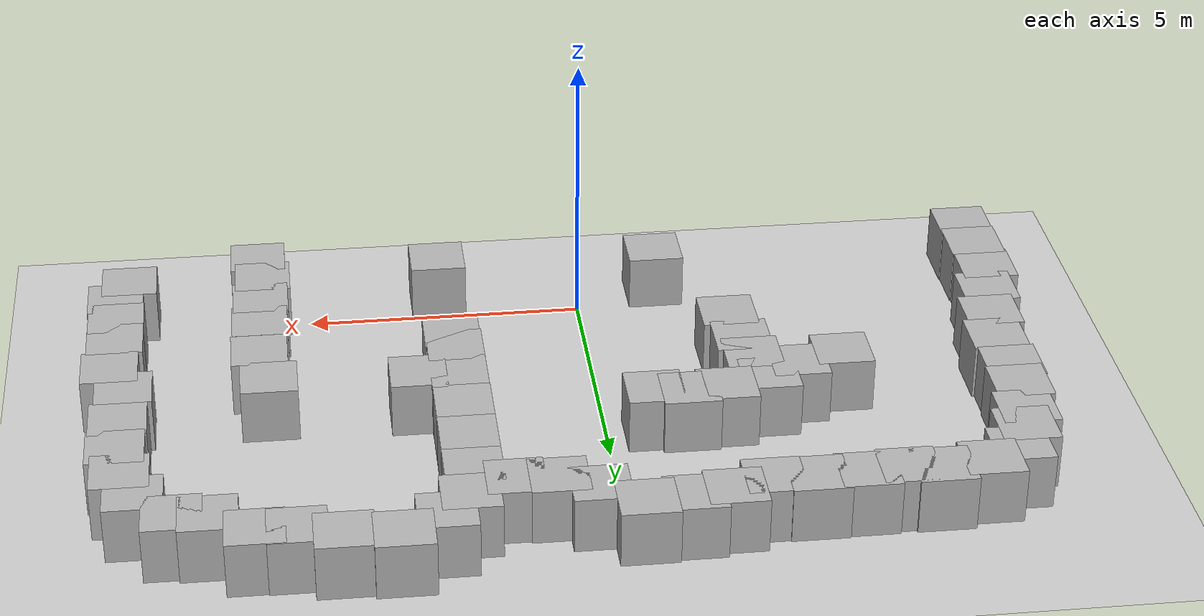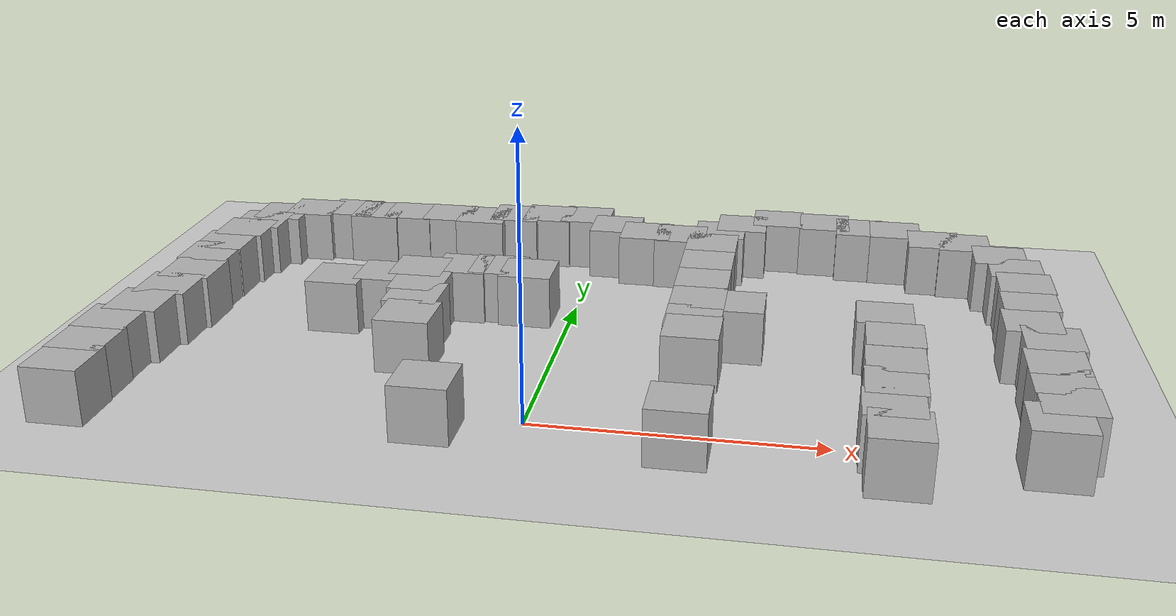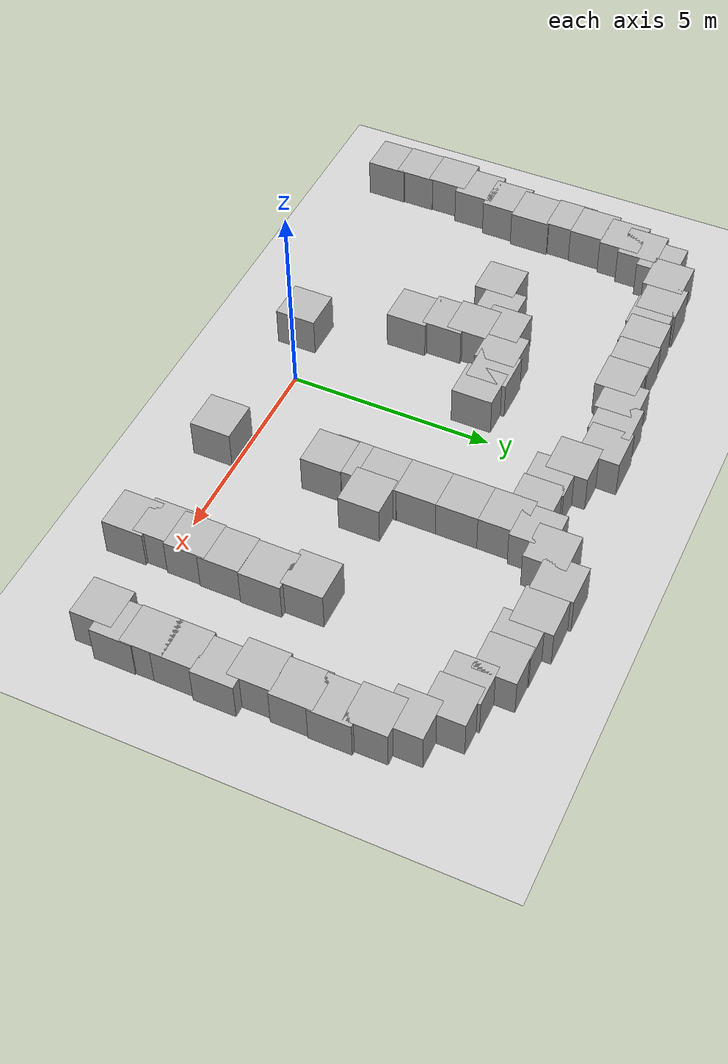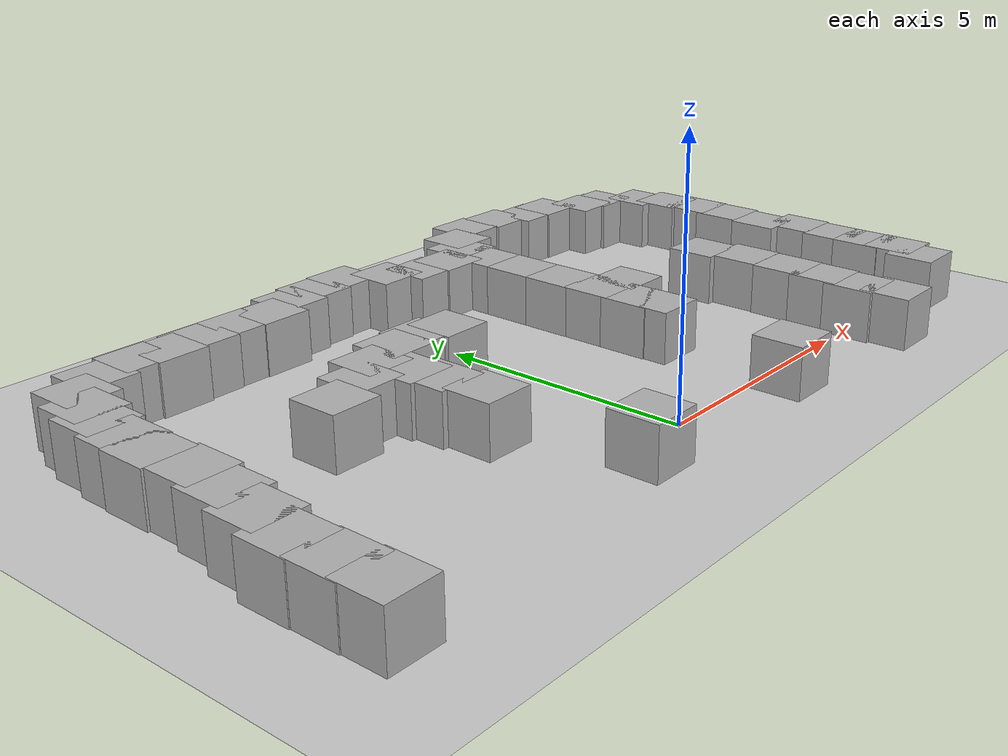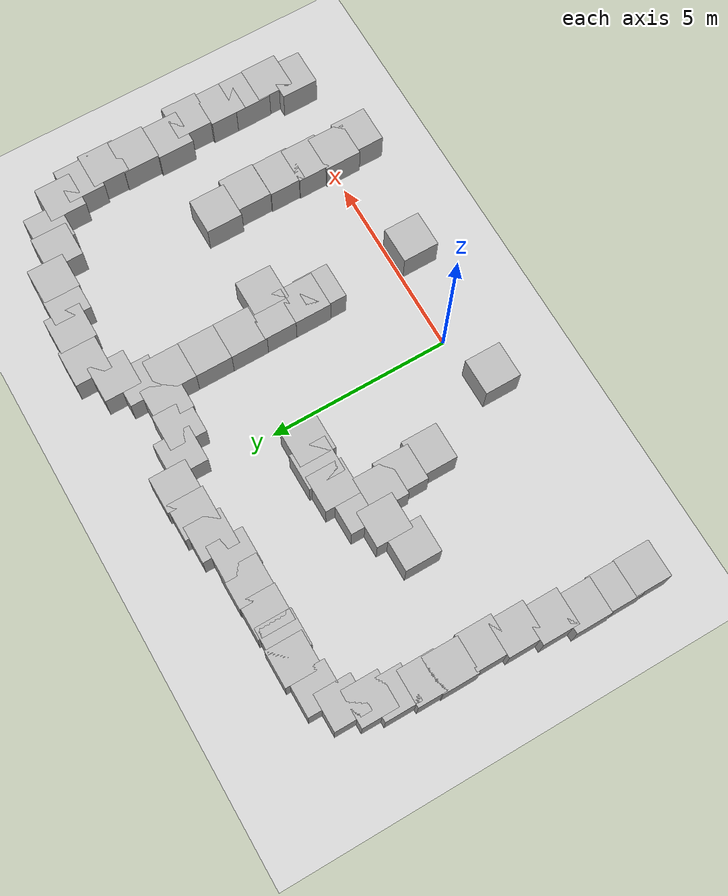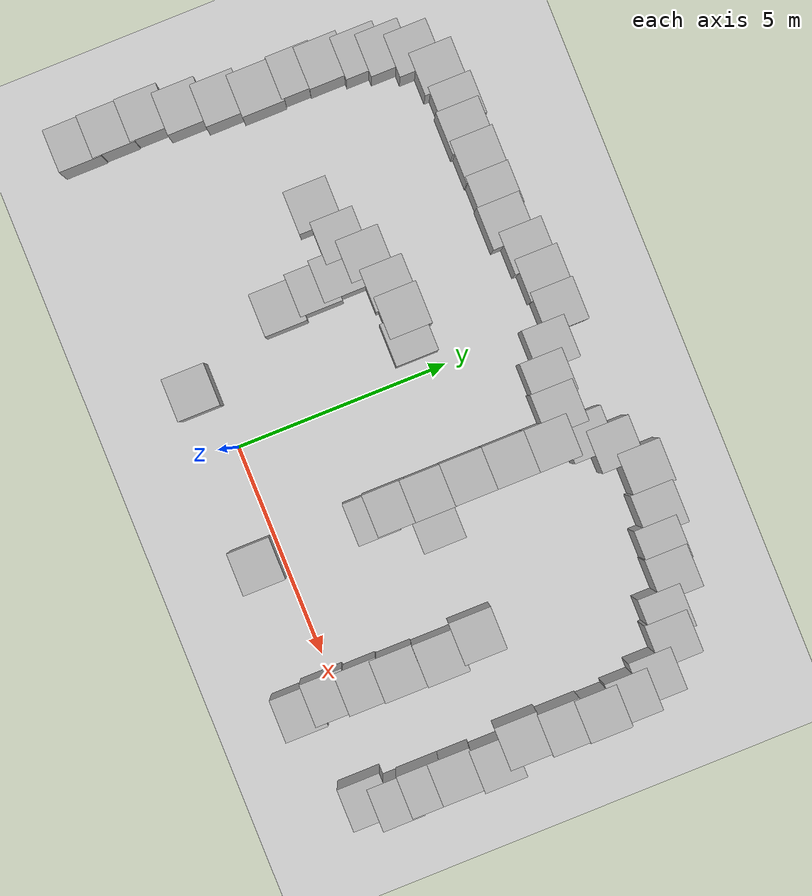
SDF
<sdf version="1.10">
 <world name="empty">
  <model name="ground_plane">
   <static>true</static>
   <link name="link">
    <collision name="collision">
     <geometry><plane><normal>0 0 1</normal><size>100 100</size></plane></geometry>
    </collision>
    <visual name="visual">
     <geometry><plane><normal>0 0 1</normal><size>100 100</size></plane></geometry>
     <material>
      <ambient>0.800000012 0.800000012 0.800000012 1</ambient>
      <diffuse>0.800000012 0.800000012 0.800000012 1</diffuse>
      <specular>0.800000012 0.800000012 0.800000012 1</specular>
     </material>
    </visual>
    <inertial>
     <mass>1</mass>
     <inertia><ixx>1</ixx><ixy>0</ixy><ixz>0</ixz><iyy>1</iyy><iyz>0</iyz><izz>1</izz></inertia>
    </inertial>
   </link>
   <pose>1 0 0 0 0 0</pose>
  </model>
  <model name="box">
   <pose>2.5 6.5 0.5 0 0 0</pose>
   <link name="box_link">
    <inertial>
     <inertia><ixx>0.16666</ixx><ixy>0</ixy><ixz>0</ixz><iyy>0.16666</iyy><iyz>0</iyz><izz>0.16666</izz></inertia>
     <mass>1</mass>
    </inertial>
    <collision name="box_collision"><geometry><box><size>1 1 1</size></box></geometry></collision>
    <visual name="box_visual">
     <geometry><box><size>1 1 1</size></box></geometry>
     <material>
      <ambient>0.300000012 0.300000012 0.300000012 1</ambient>
      <diffuse>0.699999988 0.699999988 0.699999988 1</diffuse>
      <specular>1 1 1 1</specular>
     </material>
    </visual>
   </link>
   <static>false</static>
  </model>
  <model name="box_0">
   <pose>2.5 5.5 0.5 0 0 0</pose>
   <link name="box_link">
    <inertial>
     <inertia><ixx>0.16666</ixx><ixy>0</ixy><ixz>0</ixz><iyy>0.16666</iyy><iyz>0</iyz><izz>0.16666</izz></inertia>
     <mass>1</mass>
    </inertial>
    <collision name="box_collision"><geometry><box><size>1 1 1</size></box></geometry></collision>
    <visual name="box_visual">
     <geometry><box><size>1 1 1</size></box></geometry>
     <material>
      <ambient>0.300000012 0.300000012 0.300000012 1</ambient>
      <diffuse>0.699999988 0.699999988 0.699999988 1</diffuse>
      <specular>1 1 1 1</specular>
     </material>
    </visual>
   </link>
   <static>false</static>
  </model>
  <model name="box_1">
   <pose>2.5 4.5 0.5 0 0 0</pose>
   <link name="box_link">
    <inertial>
     <inertia><ixx>0.16666</ixx><ixy>0</ixy><ixz>0</ixz><iyy>0.16666</iyy><iyz>0</iyz><izz>0.16666</izz></inertia>
     <mass>1</mass>
    </inertial>
    <collision name="box_collision"><geometry><box><size>1 1 1</size></box></geometry></collision>
    <visual name="box_visual">
     <geometry><box><size>1 1 1</size></box></geometry>
     <material>
      <ambient>0.300000012 0.300000012 0.300000012 1</ambient>
      <diffuse>0.699999988 0.699999988 0.699999988 1</diffuse>
      <specular>1 1 1 1</specular>
     </material>
    </visual>
   </link>
   <static>false</static>
  </model>
  <model name="box_1_1">
   <pose>2.5049385718494293 3.5486275147087847 0.5 0 0 0</pose>
   <link name="box_link">
    <inertial>
     <inertia><ixx>0.16666</ixx><ixy>0</ixy><ixz>0</ixz><iyy>0.16666</iyy><iyz>0</iyz><izz>0.16666</izz></inertia>
     <mass>1</mass>
    </inertial>
    <collision name="box_collision"><geometry><box><size>1 1 1</size></box></geometry></collision>
    <visual name="box_visual">
     <geometry><box><size>1 1 1</size></box></geometry>
     <material>
      <ambient>0.300000012 0.300000012 0.300000012 1</ambient>
      <diffuse>0.699999988 0.699999988 0.699999988 1</diffuse>
      <specular>1 1 1 1</specular>
     </material>
    </visual>
   </link>
   <static>false</static>
  </model>
  <model name="box_1_2">
   <pose>2.5024154906887652 2.6663764751845518 0.5 0 0 0</pose>
   <link name="box_link">
    <inertial>
     <inertia><ixx>0.16666</ixx><ixy>0</ixy><ixz>0</ixz><iyy>0.16666</iyy><iyz>0</iyz><izz>0.16666</izz></inertia>
     <mass>1</mass>
    </inertial>
    <collision name="box_collision"><geometry><box><size>1 1 1</size></box></geometry></collision>
    <visual name="box_visual">
     <geometry><box><size>1 1 1</size></box></geometry>
     <material>
      <ambient>0.300000012 0.300000012 0.300000012 1</ambient>
      <diffuse>0.699999988 0.699999988 0.699999988 1</diffuse>
      <specular>1 1 1 1</specular>
     </material>
    </visual>
   </link>
   <static>false</static>
  </model>
  <model name="box_1_22">
   <pose>1.8390095776884428 6.9125247101005636 0.5 0 0 0</pose>
   <link name="box_link">
    <inertial>
     <inertia><ixx>0.16666</ixx><ixy>0</ixy><ixz>0</ixz><iyy>0.16666</iyy><iyz>0</iyz><izz>0.16666</izz></inertia>
     <mass>1</mass>
    </inertial>
    <collision name="box_collision"><geometry><box><size>1 1 1</size></box></geometry></collision>
    <visual name="box_visual">
     <geometry><box><size>1 1 1</size></box></geometry>
     <material>
      <ambient>0.300000012 0.300000012 0.300000012 1</ambient>
      <diffuse>0.699999988 0.699999988 0.699999988 1</diffuse>
      <specular>1 1 1 1</specular>
     </material>
    </visual>
   </link>
   <static>false</static>
  </model>
  <model name="box_2">
   <pose>2.5953931885466908 -0.55783518179751967 0.5 0 0 0</pose>
   <link name="box_link">
    <inertial>
     <inertia><ixx>0.16666</ixx><ixy>0</ixy><ixz>0</ixz><iyy>0.16666</iyy><iyz>0</iyz><izz>0.16666</izz></inertia>
     <mass>1</mass>
    </inertial>
    <collision name="box_collision"><geometry><box><size>1 1 1</size></box></geometry></collision>
    <visual name="box_visual">
     <geometry><box><size>1 1 1</size></box></geometry>
     <material>
      <ambient>0.300000012 0.300000012 0.300000012 1</ambient>
      <diffuse>0.699999988 0.699999988 0.699999988 1</diffuse>
      <specular>1 1 1 1</specular>
     </material>
    </visual>
   </link>
   <static>false</static>
  </model>
  <model name="box_1_24">
   <pose>1.1212766443522475 6.951842859925919 0.5 0 0 0</pose>
   <link name="box_link">
    <inertial>
     <inertia><ixx>0.16666</ixx><ixy>0</ixy><ixz>0</ixz><iyy>0.16666</iyy><iyz>0</iyz><izz>0.16666</izz></inertia>
     <mass>1</mass>
    </inertial>
    <collision name="box_collision"><geometry><box><size>1 1 1</size></box></geometry></collision>
    <visual name="box_visual">
     <geometry><box><size>1 1 1</size></box></geometry>
     <material>
      <ambient>0.300000012 0.300000012 0.300000012 1</ambient>
      <diffuse>0.699999988 0.699999988 0.699999988 1</diffuse>
      <specular>1 1 1 1</specular>
     </material>
    </visual>
   </link>
   <static>false</static>
  </model>
  <model name="box_1_25">
   <pose>0.46318117788749635 7.2653021997369533 0.5 0 0 0</pose>
   <link name="box_link">
    <inertial>
     <inertia><ixx>0.16666</ixx><ixy>0</ixy><ixz>0</ixz><iyy>0.16666</iyy><iyz>0</iyz><izz>0.16666</izz></inertia>
     <mass>1</mass>
    </inertial>
    <collision name="box_collision"><geometry><box><size>1 1 1</size></box></geometry></collision>
    <visual name="box_visual">
     <geometry><box><size>1 1 1</size></box></geometry>
     <material>
      <ambient>0.300000012 0.300000012 0.300000012 1</ambient>
      <diffuse>0.699999988 0.699999988 0.699999988 1</diffuse>
      <specular>1 1 1 1</specular>
     </material>
    </visual>
   </link>
   <static>false</static>
  </model>
  <model name="box_1_26">
   <pose>-0.24174810026960936 7.7513211208967068 0.5 0 0 0</pose>
   <link name="box_link">
    <inertial>
     <inertia><ixx>0.16666</ixx><ixy>0</ixy><ixz>0</ixz><iyy>0.16666</iyy><iyz>0</iyz><izz>0.16666</izz></inertia>
     <mass>1</mass>
    </inertial>
    <collision name="box_collision"><geometry><box><size>1 1 1</size></box></geometry></collision>
    <visual name="box_visual">
     <geometry><box><size>1 1 1</size></box></geometry>
     <material>
      <ambient>0.300000012 0.300000012 0.300000012 1</ambient>
      <diffuse>0.699999988 0.699999988 0.699999988 1</diffuse>
      <specular>1 1 1 1</specular>
     </material>
    </visual>
   </link>
   <static>false</static>
  </model>
  <model name="box_1_27">
   <pose>-1.0430317366710962 7.6998609396056308 0.5 0 0 0</pose>
   <link name="box_link">
    <inertial>
     <inertia><ixx>0.16666</ixx><ixy>0</ixy><ixz>0</ixz><iyy>0.16666</iyy><iyz>0</iyz><izz>0.16666</izz></inertia>
     <mass>1</mass>
    </inertial>
    <collision name="box_collision"><geometry><box><size>1 1 1</size></box></geometry></collision>
    <visual name="box_visual">
     <geometry><box><size>1 1 1</size></box></geometry>
     <material>
      <ambient>0.300000012 0.300000012 0.300000012 1</ambient>
      <diffuse>0.699999988 0.699999988 0.699999988 1</diffuse>
      <specular>1 1 1 1</specular>
     </material>
    </visual>
   </link>
   <static>false</static>
  </model>
  <model name="box_1_28">
   <pose>-1.7239461451952849 7.5983014230268555 0.5 0 0 0</pose>
   <link name="box_link">
    <inertial>
     <inertia><ixx>0.16666</ixx><ixy>0</ixy><ixz>0</ixz><iyy>0.16666</iyy><iyz>0</iyz><izz>0.16666</izz></inertia>
     <mass>1</mass>
    </inertial>
    <collision name="box_collision"><geometry><box><size>1 1 1</size></box></geometry></collision>
    <visual name="box_visual">
     <geometry><box><size>1 1 1</size></box></geometry>
     <material>
      <ambient>0.300000012 0.300000012 0.300000012 1</ambient>
      <diffuse>0.699999988 0.699999988 0.699999988 1</diffuse>
      <specular>1 1 1 1</specular>
     </material>
    </visual>
   </link>
   <static>false</static>
  </model>
  <model name="box_1_29">
   <pose>-2.4038024197089833 7.3552581151350873 0.5 0 0 0</pose>
   <link name="box_link">
    <inertial>
     <inertia><ixx>0.16666</ixx><ixy>0</ixy><ixz>0</ixz><iyy>0.16666</iyy><iyz>0</iyz><izz>0.16666</izz></inertia>
     <mass>1</mass>
    </inertial>
    <collision name="box_collision"><geometry><box><size>1 1 1</size></box></geometry></collision>
    <visual name="box_visual">
     <geometry><box><size>1 1 1</size></box></geometry>
     <material>
      <ambient>0.300000012 0.300000012 0.300000012 1</ambient>
      <diffuse>0.699999988 0.699999988 0.699999988 1</diffuse>
      <specular>1 1 1 1</specular>
     </material>
    </visual>
   </link>
   <static>false</static>
  </model>
  <model name="box_1_30">
   <pose>-3.1305321310097356 7.3768259517108445 0.5 0 0 0</pose>
   <link name="box_link">
    <inertial>
     <inertia><ixx>0.16666</ixx><ixy>0</ixy><ixz>0</ixz><iyy>0.16666</iyy><iyz>0</iyz><izz>0.16666</izz></inertia>
     <mass>1</mass>
    </inertial>
    <collision name="box_collision"><geometry><box><size>1 1 1</size></box></geometry></collision>
    <visual name="box_visual">
     <geometry><box><size>1 1 1</size></box></geometry>
     <material>
      <ambient>0.300000012 0.300000012 0.300000012 1</ambient>
      <diffuse>0.699999988 0.699999988 0.699999988 1</diffuse>
      <specular>1 1 1 1</specular>
     </material>
    </visual>
   </link>
   <static>false</static>
  </model>
  <model name="box_1_31">
   <pose>-3.9780258645429649 7.3516122676149367 0.5 0 0 0</pose>
   <link name="box_link">
    <inertial>
     <inertia><ixx>0.16666</ixx><ixy>0</ixy><ixz>0</ixz><iyy>0.16666</iyy><iyz>0</iyz><izz>0.16666</izz></inertia>
     <mass>1</mass>
    </inertial>
    <collision name="box_collision"><geometry><box><size>1 1 1</size></box></geometry></collision>
    <visual name="box_visual">
     <geometry><box><size>1 1 1</size></box></geometry>
     <material>
      <ambient>0.300000012 0.300000012 0.300000012 1</ambient>
      <diffuse>0.699999988 0.699999988 0.699999988 1</diffuse>
      <specular>1 1 1 1</specular>
     </material>
    </visual>
   </link>
   <static>false</static>
  </model>
  <model name="box_1_32">
   <pose>-4.6791211502954528 7.30150294179818 0.5 0 0 0</pose>
   <link name="box_link">
    <inertial>
     <inertia><ixx>0.16666</ixx><ixy>0</ixy><ixz>0</ixz><iyy>0.16666</iyy><iyz>0</iyz><izz>0.16666</izz></inertia>
     <mass>1</mass>
    </inertial>
    <collision name="box_collision"><geometry><box><size>1 1 1</size></box></geometry></collision>
    <visual name="box_visual">
     <geometry><box><size>1 1 1</size></box></geometry>
     <material>
      <ambient>0.300000012 0.300000012 0.300000012 1</ambient>
      <diffuse>0.699999988 0.699999988 0.699999988 1</diffuse>
      <specular>1 1 1 1</specular>
     </material>
    </visual>
   </link>
   <static>false</static>
  </model>
  <model name="box_1_33">
   <pose>-5.2585458140984302 7.3480616508151568 0.5 0 0 0</pose>
   <link name="box_link">
    <inertial>
     <inertia><ixx>0.16666</ixx><ixy>0</ixy><ixz>0</ixz><iyy>0.16666</iyy><iyz>0</iyz><izz>0.16666</izz></inertia>
     <mass>1</mass>
    </inertial>
    <collision name="box_collision"><geometry><box><size>1 1 1</size></box></geometry></collision>
    <visual name="box_visual">
     <geometry><box><size>1 1 1</size></box></geometry>
     <material>
      <ambient>0.300000012 0.300000012 0.300000012 1</ambient>
      <diffuse>0.699999988 0.699999988 0.699999988 1</diffuse>
      <specular>1 1 1 1</specular>
     </material>
    </visual>
   </link>
   <static>false</static>
  </model>
  <model name="box_1_34">
   <pose>-6.1023071177948891 7.2247757718515402 0.5 0 0 0</pose>
   <link name="box_link">
    <inertial>
     <inertia><ixx>0.16666</ixx><ixy>0</ixy><ixz>0</ixz><iyy>0.16666</iyy><iyz>0</iyz><izz>0.16666</izz></inertia>
     <mass>1</mass>
    </inertial>
    <collision name="box_collision"><geometry><box><size>1 1 1</size></box></geometry></collision>
    <visual name="box_visual">
     <geometry><box><size>1 1 1</size></box></geometry>
     <material>
      <ambient>0.300000012 0.300000012 0.300000012 1</ambient>
      <diffuse>0.699999988 0.699999988 0.699999988 1</diffuse>
      <specular>1 1 1 1</specular>
     </material>
    </visual>
   </link>
   <static>false</static>
  </model>
  <model name="box_1_35">
   <pose>-6.6819798126192902 6.8613695117720566 0.5 0 0 0</pose>
   <link name="box_link">
    <inertial>
     <inertia><ixx>0.16666</ixx><ixy>0</ixy><ixz>0</ixz><iyy>0.16666</iyy><iyz>0</iyz><izz>0.16666</izz></inertia>
     <mass>1</mass>
    </inertial>
    <collision name="box_collision"><geometry><box><size>1 1 1</size></box></geometry></collision>
    <visual name="box_visual">
     <geometry><box><size>1 1 1</size></box></geometry>
     <material>
      <ambient>0.300000012 0.300000012 0.300000012 1</ambient>
      <diffuse>0.699999988 0.699999988 0.699999988 1</diffuse>
      <specular>1 1 1 1</specular>
     </material>
    </visual>
   </link>
   <static>false</static>
  </model>
  <model name="box_1_36">
   <pose>-6.9235913345916424 6.2800081348323689 0.5 0 0 0</pose>
   <link name="box_link">
    <inertial>
     <inertia><ixx>0.16666</ixx><ixy>0</ixy><ixz>0</ixz><iyy>0.16666</iyy><iyz>0</iyz><izz>0.16666</izz></inertia>
     <mass>1</mass>
    </inertial>
    <collision name="box_collision"><geometry><box><size>1 1 1</size></box></geometry></collision>
    <visual name="box_visual">
     <geometry><box><size>1 1 1</size></box></geometry>
     <material>
      <ambient>0.300000012 0.300000012 0.300000012 1</ambient>
      <diffuse>0.699999988 0.699999988 0.699999988 1</diffuse>
      <specular>1 1 1 1</specular>
     </material>
    </visual>
   </link>
   <static>false</static>
  </model>
  <model name="box_1_37">
   <pose>-7.0689801052619092 5.7475158818589129 0.5 0 0 0</pose>
   <link name="box_link">
    <inertial>
     <inertia><ixx>0.16666</ixx><ixy>0</ixy><ixz>0</ixz><iyy>0.16666</iyy><iyz>0</iyz><izz>0.16666</izz></inertia>
     <mass>1</mass>
    </inertial>
    <collision name="box_collision"><geometry><box><size>1 1 1</size></box></geometry></collision>
    <visual name="box_visual">
     <geometry><box><size>1 1 1</size></box></geometry>
     <material>
      <ambient>0.300000012 0.300000012 0.300000012 1</ambient>
      <diffuse>0.699999988 0.699999988 0.699999988 1</diffuse>
      <specular>1 1 1 1</specular>
     </material>
    </visual>
   </link>
   <static>false</static>
  </model>
  <model name="box_1_38">
   <pose>-7.168019192651002 4.9262182679670365 0.5 0 0 0</pose>
   <link name="box_link">
    <inertial>
     <inertia><ixx>0.16666</ixx><ixy>0</ixy><ixz>0</ixz><iyy>0.16666</iyy><iyz>0</iyz><izz>0.16666</izz></inertia>
     <mass>1</mass>
    </inertial>
    <collision name="box_collision"><geometry><box><size>1 1 1</size></box></geometry></collision>
    <visual name="box_visual">
     <geometry><box><size>1 1 1</size></box></geometry>
     <material>
      <ambient>0.300000012 0.300000012 0.300000012 1</ambient>
      <diffuse>0.699999988 0.699999988 0.699999988 1</diffuse>
      <specular>1 1 1 1</specular>
     </material>
    </visual>
   </link>
   <static>false</static>
  </model>
  <model name="box_1_39">
   <pose>-7.1939688455897963 4.2738083429636511 0.5 0 0 0</pose>
   <link name="box_link">
    <inertial>
     <inertia><ixx>0.16666</ixx><ixy>0</ixy><ixz>0</ixz><iyy>0.16666</iyy><iyz>0</iyz><izz>0.16666</izz></inertia>
     <mass>1</mass>
    </inertial>
    <collision name="box_collision"><geometry><box><size>1 1 1</size></box></geometry></collision>
    <visual name="box_visual">
     <geometry><box><size>1 1 1</size></box></geometry>
     <material>
      <ambient>0.300000012 0.300000012 0.300000012 1</ambient>
      <diffuse>0.699999988 0.699999988 0.699999988 1</diffuse>
      <specular>1 1 1 1</specular>
     </material>
    </visual>
   </link>
   <static>false</static>
  </model>
  <model name="box_1_40">
   <pose>-7.1479088836899933 3.3309824655234781 0.5 0 0 0</pose>
   <link name="box_link">
    <inertial>
     <inertia><ixx>0.16666</ixx><ixy>0</ixy><ixz>0</ixz><iyy>0.16666</iyy><iyz>0</iyz><izz>0.16666</izz></inertia>
     <mass>1</mass>
    </inertial>
    <collision name="box_collision"><geometry><box><size>1 1 1</size></box></geometry></collision>
    <visual name="box_visual">
     <geometry><box><size>1 1 1</size></box></geometry>
     <material>
      <ambient>0.300000012 0.300000012 0.300000012 1</ambient>
      <diffuse>0.699999988 0.699999988 0.699999988 1</diffuse>
      <specular>1 1 1 1</specular>
     </material>
    </visual>
   </link>
   <static>false</static>
  </model>
  <model name="box_1_41">
   <pose>-7.2469488566596301 2.5094696017960421 0.5 0 0 0</pose>
   <link name="box_link">
    <inertial>
     <inertia><ixx>0.16666</ixx><ixy>0</ixy><ixz>0</ixz><iyy>0.16666</iyy><iyz>0</iyz><izz>0.16666</izz></inertia>
     <mass>1</mass>
    </inertial>
    <collision name="box_collision"><geometry><box><size>1 1 1</size></box></geometry></collision>
    <visual name="box_visual">
     <geometry><box><size>1 1 1</size></box></geometry>
     <material>
      <ambient>0.300000012 0.300000012 0.300000012 1</ambient>
      <diffuse>0.699999988 0.699999988 0.699999988 1</diffuse>
      <specular>1 1 1 1</specular>
     </material>
    </visual>
   </link>
   <static>false</static>
  </model>
  <model name="box_1_42">
   <pose>-7.3935457527576602 1.6638655802535094 0.5 0 0 0</pose>
   <link name="box_link">
    <inertial>
     <inertia><ixx>0.16666</ixx><ixy>0</ixy><ixz>0</ixz><iyy>0.16666</iyy><iyz>0</iyz><izz>0.16666</izz></inertia>
     <mass>1</mass>
    </inertial>
    <collision name="box_collision"><geometry><box><size>1 1 1</size></box></geometry></collision>
    <visual name="box_visual">
     <geometry><box><size>1 1 1</size></box></geometry>
     <material>
      <ambient>0.300000012 0.300000012 0.300000012 1</ambient>
      <diffuse>0.699999988 0.699999988 0.699999988 1</diffuse>
      <specular>1 1 1 1</specular>
     </material>
    </visual>
   </link>
   <static>false</static>
  </model>
  <model name="box_1_43">
   <pose>-7.56252000247457 0.84286038644111905 0.5 0 0 0</pose>
   <link name="box_link">
    <inertial>
     <inertia><ixx>0.16666</ixx><ixy>0</ixy><ixz>0</ixz><iyy>0.16666</iyy><iyz>0</iyz><izz>0.16666</izz></inertia>
     <mass>1</mass>
    </inertial>
    <collision name="box_collision"><geometry><box><size>1 1 1</size></box></geometry></collision>
    <visual name="box_visual">
     <geometry><box><size>1 1 1</size></box></geometry>
     <material>
      <ambient>0.300000012 0.300000012 0.300000012 1</ambient>
      <diffuse>0.699999988 0.699999988 0.699999988 1</diffuse>
      <specular>1 1 1 1</specular>
     </material>
    </visual>
   </link>
   <static>false</static>
  </model>
  <model name="box_1_44">
   <pose>-7.5409078313910296 -0.050802042775549783 0.5 0 0 0</pose>
   <link name="box_link">
    <inertial>
     <inertia><ixx>0.16666</ixx><ixy>0</ixy><ixz>0</ixz><iyy>0.16666</iyy><iyz>0</iyz><izz>0.16666</izz></inertia>
     <mass>1</mass>
    </inertial>
    <collision name="box_collision"><geometry><box><size>1 1 1</size></box></geometry></collision>
    <visual name="box_visual">
     <geometry><box><size>1 1 1</size></box></geometry>
     <material>
      <ambient>0.300000012 0.300000012 0.300000012 1</ambient>
      <diffuse>0.699999988 0.699999988 0.699999988 1</diffuse>
      <specular>1 1 1 1</specular>
     </material>
    </visual>
   </link>
   <static>false</static>
  </model>
  <model name="box_1_45">
   <pose>-7.5202006754419504 -0.84846277864733555 0.5 0 0 0</pose>
   <link name="box_link">
    <inertial>
     <inertia><ixx>0.16666</ixx><ixy>0</ixy><ixz>0</ixz><iyy>0.16666</iyy><iyz>0</iyz><izz>0.16666</izz></inertia>
     <mass>1</mass>
    </inertial>
    <collision name="box_collision"><geometry><box><size>1 1 1</size></box></geometry></collision>
    <visual name="box_visual">
     <geometry><box><size>1 1 1</size></box></geometry>
     <material>
      <ambient>0.300000012 0.300000012 0.300000012 1</ambient>
      <diffuse>0.699999988 0.699999988 0.699999988 1</diffuse>
      <specular>1 1 1 1</specular>
     </material>
    </visual>
   </link>
   <static>false</static>
  </model>
  <model name="box_1_2_1">
   <pose>2.5251377218941968 2.2006586675346931 0.5 0 0 0</pose>
   <link name="box_link">
    <inertial>
     <inertia><ixx>0.16666</ixx><ixy>0</ixy><ixz>0</ixz><iyy>0.16666</iyy><iyz>0</iyz><izz>0.16666</izz></inertia>
     <mass>1</mass>
    </inertial>
    <collision name="box_collision"><geometry><box><size>1 1 1</size></box></geometry></collision>
    <visual name="box_visual">
     <geometry><box><size>1 1 1</size></box></geometry>
     <material>
      <ambient>0.300000012 0.300000012 0.300000012 1</ambient>
      <diffuse>0.699999988 0.699999988 0.699999988 1</diffuse>
      <specular>1 1 1 1</specular>
     </material>
    </visual>
   </link>
   <static>false</static>
  </model>
  <model name="box_1_2_2">
   <pose>3.215073166559395 3.4679199159962528 0.5 0 0 0</pose>
   <link name="box_link">
    <inertial>
     <inertia><ixx>0.16666</ixx><ixy>0</ixy><ixz>0</ixz><iyy>0.16666</iyy><iyz>0</iyz><izz>0.16666</izz></inertia>
     <mass>1</mass>
    </inertial>
    <collision name="box_collision"><geometry><box><size>1 1 1</size></box></geometry></collision>
    <visual name="box_visual">
     <geometry><box><size>1 1 1</size></box></geometry>
     <material>
      <ambient>0.300000012 0.300000012 0.300000012 1</ambient>
      <diffuse>0.699999988 0.699999988 0.699999988 1</diffuse>
      <specular>1 1 1 1</specular>
     </material>
    </visual>
   </link>
   <static>false</static>
  </model>
  <model name="box_1_2_5">
   <pose>5.815467349680282 3.3921092708797387 0.5 0 0 0</pose>
   <link name="box_link">
    <inertial>
     <inertia><ixx>0.16666</ixx><ixy>0</ixy><ixz>0</ixz><iyy>0.16666</iyy><iyz>0</iyz><izz>0.16666</izz></inertia>
     <mass>1</mass>
    </inertial>
    <collision name="box_collision"><geometry><box><size>1 1 1</size></box></geometry></collision>
    <visual name="box_visual">
     <geometry><box><size>1 1 1</size></box></geometry>
     <material>
      <ambient>0.300000012 0.300000012 0.300000012 1</ambient>
      <diffuse>0.699999988 0.699999988 0.699999988 1</diffuse>
      <specular>1 1 1 1</specular>
     </material>
    </visual>
   </link>
   <static>false</static>
  </model>
  <model name="box_1_2_6">
   <pose>5.962259431641411 2.4635632360457871 0.5 0 0 0</pose>
   <link name="box_link">
    <inertial>
     <inertia><ixx>0.16666</ixx><ixy>0</ixy><ixz>0</ixz><iyy>0.16666</iyy><iyz>0</iyz><izz>0.16666</izz></inertia>
     <mass>1</mass>
    </inertial>
    <collision name="box_collision"><geometry><box><size>1 1 1</size></box></geometry></collision>
    <visual name="box_visual">
     <geometry><box><size>1 1 1</size></box></geometry>
     <material>
      <ambient>0.300000012 0.300000012 0.300000012 1</ambient>
      <diffuse>0.699999988 0.699999988 0.699999988 1</diffuse>
      <specular>1 1 1 1</specular>
     </material>
    </visual>
   </link>
   <static>false</static>
  </model>
  <model name="box_1_2_7">
   <pose>5.9349115625912159 1.4610829044171634 0.5 0 0 0</pose>
   <link name="box_link">
    <inertial>
     <inertia><ixx>0.16666</ixx><ixy>0</ixy><ixz>0</ixz><iyy>0.16666</iyy><iyz>0</iyz><izz>0.16666</izz></inertia>
     <mass>1</mass>
    </inertial>
    <collision name="box_collision"><geometry><box><size>1 1 1</size></box></geometry></collision>
    <visual name="box_visual">
     <geometry><box><size>1 1 1</size></box></geometry>
     <material>
      <ambient>0.300000012 0.300000012 0.300000012 1</ambient>
      <diffuse>0.699999988 0.699999988 0.699999988 1</diffuse>
      <specular>1 1 1 1</specular>
     </material>
    </visual>
   </link>
   <static>false</static>
  </model>
  <model name="box_1_2_8">
   <pose>5.9070051547356339 0.62957535183164692 0.5 0 0 0</pose>
   <link name="box_link">
    <inertial>
     <inertia><ixx>0.16666</ixx><ixy>0</ixy><ixz>0</ixz><iyy>0.16666</iyy><iyz>0</iyz><izz>0.16666</izz></inertia>
     <mass>1</mass>
    </inertial>
    <collision name="box_collision"><geometry><box><size>1 1 1</size></box></geometry></collision>
    <visual name="box_visual">
     <geometry><box><size>1 1 1</size></box></geometry>
     <material>
      <ambient>0.300000012 0.300000012 0.300000012 1</ambient>
      <diffuse>0.699999988 0.699999988 0.699999988 1</diffuse>
      <specular>1 1 1 1</specular>
     </material>
    </visual>
   </link>
   <static>false</static>
  </model>
  <model name="box_1_2_9">
   <pose>5.8543967576877742 -0.15240530700510235 0.5 0 0 0</pose>
   <link name="box_link">
    <inertial>
     <inertia><ixx>0.16666</ixx><ixy>0</ixy><ixz>0</ixz><iyy>0.16666</iyy><iyz>0</iyz><izz>0.16666</izz></inertia>
     <mass>1</mass>
    </inertial>
    <collision name="box_collision"><geometry><box><size>1 1 1</size></box></geometry></collision>
    <visual name="box_visual">
     <geometry><box><size>1 1 1</size></box></geometry>
     <material>
      <ambient>0.300000012 0.300000012 0.300000012 1</ambient>
      <diffuse>0.699999988 0.699999988 0.699999988 1</diffuse>
      <specular>1 1 1 1</specular>
     </material>
    </visual>
   </link>
   <static>false</static>
  </model>
  <model name="box_1_2_10">
   <pose>5.9285658889265509 -0.88671614448542657 0.5 0 0 0</pose>
   <link name="box_link">
    <inertial>
     <inertia><ixx>0.16666</ixx><ixy>0</ixy><ixz>0</ixz><iyy>0.16666</iyy><iyz>0</iyz><izz>0.16666</izz></inertia>
     <mass>1</mass>
    </inertial>
    <collision name="box_collision"><geometry><box><size>1 1 1</size></box></geometry></collision>
    <visual name="box_visual">
     <geometry><box><size>1 1 1</size></box></geometry>
     <material>
      <ambient>0.300000012 0.300000012 0.300000012 1</ambient>
      <diffuse>0.699999988 0.699999988 0.699999988 1</diffuse>
      <specular>1 1 1 1</specular>
     </material>
    </visual>
   </link>
   <static>false</static>
  </model>
  <model name="box_1_2_3">
   <pose>8.4258459255237774 5.3162144265812561 0.5 0 0 0</pose>
   <link name="box_link">
    <inertial>
     <inertia><ixx>0.16666</ixx><ixy>0</ixy><ixz>0</ixz><iyy>0.16666</iyy><iyz>0</iyz><izz>0.16666</izz></inertia>
     <mass>1</mass>
    </inertial>
    <collision name="box_collision"><geometry><box><size>1 1 1</size></box></geometry></collision>
    <visual name="box_visual">
     <geometry><box><size>1 1 1</size></box></geometry>
     <material>
      <ambient>0.300000012 0.300000012 0.300000012 1</ambient>
      <diffuse>0.699999988 0.699999988 0.699999988 1</diffuse>
      <specular>1 1 1 1</specular>
     </material>
    </visual>
   </link>
   <static>false</static>
  </model>
  <model name="box_1_2_4">
   <pose>8.3990305717472395 4.4497065029239398 0.5 0 0 0</pose>
   <link name="box_link">
    <inertial>
     <inertia><ixx>0.16666</ixx><ixy>0</ixy><ixz>0</ixz><iyy>0.16666</iyy><iyz>0</iyz><izz>0.16666</izz></inertia>
     <mass>1</mass>
    </inertial>
    <collision name="box_collision"><geometry><box><size>1 1 1</size></box></geometry></collision>
    <visual name="box_visual">
     <geometry><box><size>1 1 1</size></box></geometry>
     <material>
      <ambient>0.300000012 0.300000012 0.300000012 1</ambient>
      <diffuse>0.699999988 0.699999988 0.699999988 1</diffuse>
      <specular>1 1 1 1</specular>
     </material>
    </visual>
   </link>
   <static>false</static>
  </model>
  <model name="box_1_2_55">
   <pose>8.3261225969659343 3.466712917348834 0.5 0 0 0</pose>
   <link name="box_link">
    <inertial>
     <inertia><ixx>0.16666</ixx><ixy>0</ixy><ixz>0</ixz><iyy>0.16666</iyy><iyz>0</iyz><izz>0.16666</izz></inertia>
     <mass>1</mass>
    </inertial>
    <collision name="box_collision"><geometry><box><size>1 1 1</size></box></geometry></collision>
    <visual name="box_visual">
     <geometry><box><size>1 1 1</size></box></geometry>
     <material>
      <ambient>0.300000012 0.300000012 0.300000012 1</ambient>
      <diffuse>0.699999988 0.699999988 0.699999988 1</diffuse>
      <specular>1 1 1 1</specular>
     </material>
    </visual>
   </link>
   <static>false</static>
  </model>
  <model name="box_1_2_56">
   <pose>8.5833357119631728 2.7630571541522015 0.5 0 0 0</pose>
   <link name="box_link">
    <inertial>
     <inertia><ixx>0.16666</ixx><ixy>0</ixy><ixz>0</ixz><iyy>0.16666</iyy><iyz>0</iyz><izz>0.16666</izz></inertia>
     <mass>1</mass>
    </inertial>
    <collision name="box_collision"><geometry><box><size>1 1 1</size></box></geometry></collision>
    <visual name="box_visual">
     <geometry><box><size>1 1 1</size></box></geometry>
     <material>
      <ambient>0.300000012 0.300000012 0.300000012 1</ambient>
      <diffuse>0.699999988 0.699999988 0.699999988 1</diffuse>
      <specular>1 1 1 1</specular>
     </material>
    </visual>
   </link>
   <static>false</static>
  </model>
  <model name="box_1_2_57">
   <pose>8.5103432615001058 1.8017639518339501 0.5 0 0 0</pose>
   <link name="box_link">
    <inertial>
     <inertia><ixx>0.16666</ixx><ixy>0</ixy><ixz>0</ixz><iyy>0.16666</iyy><iyz>0</iyz><izz>0.16666</izz></inertia>
     <mass>1</mass>
    </inertial>
    <collision name="box_collision"><geometry><box><size>1 1 1</size></box></geometry></collision>
    <visual name="box_visual">
     <geometry><box><size>1 1 1</size></box></geometry>
     <material>
      <ambient>0.300000012 0.300000012 0.300000012 1</ambient>
      <diffuse>0.699999988 0.699999988 0.699999988 1</diffuse>
      <specular>1 1 1 1</specular>
     </material>
    </visual>
   </link>
   <static>false</static>
  </model>
  <model name="box_1_2_58">
   <pose>8.5086664105743459 1.0757643863411168 0.5 0 0 0</pose>
   <link name="box_link">
    <inertial>
     <inertia><ixx>0.16666</ixx><ixy>0</ixy><ixz>0</ixz><iyy>0.16666</iyy><iyz>0</iyz><izz>0.16666</izz></inertia>
     <mass>1</mass>
    </inertial>
    <collision name="box_collision"><geometry><box><size>1 1 1</size></box></geometry></collision>
    <visual name="box_visual">
     <geometry><box><size>1 1 1</size></box></geometry>
     <material>
      <ambient>0.300000012 0.300000012 0.300000012 1</ambient>
      <diffuse>0.699999988 0.699999988 0.699999988 1</diffuse>
      <specular>1 1 1 1</specular>
     </material>
    </visual>
   </link>
   <static>false</static>
  </model>
  <model name="box_1_2_59">
   <pose>8.5304627382018445 0.37323788214775888 0.5 0 0 0</pose>
   <link name="box_link">
    <inertial>
     <inertia><ixx>0.16666</ixx><ixy>0</ixy><ixz>0</ixz><iyy>0.16666</iyy><iyz>0</iyz><izz>0.16666</izz></inertia>
     <mass>1</mass>
    </inertial>
    <collision name="box_collision"><geometry><box><size>1 1 1</size></box></geometry></collision>
    <visual name="box_visual">
     <geometry><box><size>1 1 1</size></box></geometry>
     <material>
      <ambient>0.300000012 0.300000012 0.300000012 1</ambient>
      <diffuse>0.699999988 0.699999988 0.699999988 1</diffuse>
      <specular>1 1 1 1</specular>
     </material>
    </visual>
   </link>
   <static>false</static>
  </model>
  <model name="box_1_2_60">
   <pose>8.2926014689829231 -0.23312632429195013 0.5 0 0 0</pose>
   <link name="box_link">
    <inertial>
     <inertia><ixx>0.16666</ixx><ixy>0</ixy><ixz>0</ixz><iyy>0.16666</iyy><iyz>0</iyz><izz>0.16666</izz></inertia>
     <mass>1</mass>
    </inertial>
    <collision name="box_collision"><geometry><box><size>1 1 1</size></box></geometry></collision>
    <visual name="box_visual">
     <geometry><box><size>1 1 1</size></box></geometry>
     <material>
      <ambient>0.300000012 0.300000012 0.300000012 1</ambient>
      <diffuse>0.699999988 0.699999988 0.699999988 1</diffuse>
      <specular>1 1 1 1</specular>
     </material>
    </visual>
   </link>
   <static>false</static>
  </model>
  <model name="box_1_2_63">
   <pose>8.3336647250325697 6.0662386970093403 0.5 0 0 0</pose>
   <link name="box_link">
    <inertial>
     <inertia><ixx>0.16666</ixx><ixy>0</ixy><ixz>0</ixz><iyy>0.16666</iyy><iyz>0</iyz><izz>0.16666</izz></inertia>
     <mass>1</mass>
    </inertial>
    <collision name="box_collision"><geometry><box><size>1 1 1</size></box></geometry></collision>
    <visual name="box_visual">
     <geometry><box><size>1 1 1</size></box></geometry>
     <material>
      <ambient>0.300000012 0.300000012 0.300000012 1</ambient>
      <diffuse>0.699999988 0.699999988 0.699999988 1</diffuse>
      <specular>1 1 1 1</specular>
     </material>
    </visual>
   </link>
   <static>false</static>
  </model>
  <model name="box_1_2_64">
   <pose>8.1001580480490301 6.7228473889222853 0.5 0 0 0</pose>
   <link name="box_link">
    <inertial>
     <inertia><ixx>0.16666</ixx><ixy>0</ixy><ixz>0</ixz><iyy>0.16666</iyy><iyz>0</iyz><izz>0.16666</izz></inertia>
     <mass>1</mass>
    </inertial>
    <collision name="box_collision"><geometry><box><size>1 1 1</size></box></geometry></collision>
    <visual name="box_visual">
     <geometry><box><size>1 1 1</size></box></geometry>
     <material>
      <ambient>0.300000012 0.300000012 0.300000012 1</ambient>
      <diffuse>0.699999988 0.699999988 0.699999988 1</diffuse>
      <specular>1 1 1 1</specular>
     </material>
    </visual>
   </link>
   <static>false</static>
  </model>
  <model name="box_1_2_65">
   <pose>7.4690752237644942 7.356344172102073 0.5 0 0 0</pose>
   <link name="box_link">
    <inertial>
     <inertia><ixx>0.16666</ixx><ixy>0</ixy><ixz>0</ixz><iyy>0.16666</iyy><iyz>0</iyz><izz>0.16666</izz></inertia>
     <mass>1</mass>
    </inertial>
    <collision name="box_collision"><geometry><box><size>1 1 1</size></box></geometry></collision>
    <visual name="box_visual">
     <geometry><box><size>1 1 1</size></box></geometry>
     <material>
      <ambient>0.300000012 0.300000012 0.300000012 1</ambient>
      <diffuse>0.699999988 0.699999988 0.699999988 1</diffuse>
      <specular>1 1 1 1</specular>
     </material>
    </visual>
   </link>
   <static>false</static>
  </model>
  <model name="box_1_2_66">
   <pose>6.8836772387916989 7.4268569353624745 0.5 0 0 0</pose>
   <link name="box_link">
    <inertial>
     <inertia><ixx>0.16666</ixx><ixy>0</ixy><ixz>0</ixz><iyy>0.16666</iyy><iyz>0</iyz><izz>0.16666</izz></inertia>
     <mass>1</mass>
    </inertial>
    <collision name="box_collision"><geometry><box><size>1 1 1</size></box></geometry></collision>
    <visual name="box_visual">
     <geometry><box><size>1 1 1</size></box></geometry>
     <material>
      <ambient>0.300000012 0.300000012 0.300000012 1</ambient>
      <diffuse>0.699999988 0.699999988 0.699999988 1</diffuse>
      <specular>1 1 1 1</specular>
     </material>
    </visual>
   </link>
   <static>false</static>
  </model>
  <model name="box_1_2_67">
   <pose>6.1346292877791644 7.8951731052122618 0.5 0 0 0</pose>
   <link name="box_link">
    <inertial>
     <inertia><ixx>0.16666</ixx><ixy>0</ixy><ixz>0</ixz><iyy>0.16666</iyy><iyz>0</iyz><izz>0.16666</izz></inertia>
     <mass>1</mass>
    </inertial>
    <collision name="box_collision"><geometry><box><size>1 1 1</size></box></geometry></collision>
    <visual name="box_visual">
     <geometry><box><size>1 1 1</size></box></geometry>
     <material>
      <ambient>0.300000012 0.300000012 0.300000012 1</ambient>
      <diffuse>0.699999988 0.699999988 0.699999988 1</diffuse>
      <specular>1 1 1 1</specular>
     </material>
    </visual>
   </link>
   <static>false</static>
  </model>
  <model name="box_1_2_68">
   <pose>5.4567162485493217 7.9181486323539261 0.5 0 0 0</pose>
   <link name="box_link">
    <inertial>
     <inertia><ixx>0.16666</ixx><ixy>0</ixy><ixz>0</ixz><iyy>0.16666</iyy><iyz>0</iyz><izz>0.16666</izz></inertia>
     <mass>1</mass>
    </inertial>
    <collision name="box_collision"><geometry><box><size>1 1 1</size></box></geometry></collision>
    <visual name="box_visual">
     <geometry><box><size>1 1 1</size></box></geometry>
     <material>
      <ambient>0.300000012 0.300000012 0.300000012 1</ambient>
      <diffuse>0.699999988 0.699999988 0.699999988 1</diffuse>
      <specular>1 1 1 1</specular>
     </material>
    </visual>
   </link>
   <static>false</static>
  </model>
  <model name="box_1_2_69">
   <pose>4.7094152039695523 8.1298728094364527 0.5 0 0 0</pose>
   <link name="box_link">
    <inertial>
     <inertia><ixx>0.16666</ixx><ixy>0</ixy><ixz>0</ixz><iyy>0.16666</iyy><iyz>0</iyz><izz>0.16666</izz></inertia>
     <mass>1</mass>
    </inertial>
    <collision name="box_collision"><geometry><box><size>1 1 1</size></box></geometry></collision>
    <visual name="box_visual">
     <geometry><box><size>1 1 1</size></box></geometry>
     <material>
      <ambient>0.300000012 0.300000012 0.300000012 1</ambient>
      <diffuse>0.699999988 0.699999988 0.699999988 1</diffuse>
      <specular>1 1 1 1</specular>
     </material>
    </visual>
   </link>
   <static>false</static>
  </model>
  <model name="box_1_2_70">
   <pose>3.753715103221559 8.200149398521182 0.5 0 0 0</pose>
   <link name="box_link">
    <inertial>
     <inertia><ixx>0.16666</ixx><ixy>0</ixy><ixz>0</ixz><iyy>0.16666</iyy><iyz>0</iyz><izz>0.16666</izz></inertia>
     <mass>1</mass>
    </inertial>
    <collision name="box_collision"><geometry><box><size>1 1 1</size></box></geometry></collision>
    <visual name="box_visual">
     <geometry><box><size>1 1 1</size></box></geometry>
     <material>
      <ambient>0.300000012 0.300000012 0.300000012 1</ambient>
      <diffuse>0.699999988 0.699999988 0.699999988 1</diffuse>
      <specular>1 1 1 1</specular>
     </material>
    </visual>
   </link>
   <static>false</static>
  </model>
  <model name="box_1_2_71">
   <pose>3.0310442397204707 7.7566827912175667 0.5 0 0 0</pose>
   <link name="box_link">
    <inertial>
     <inertia><ixx>0.16666</ixx><ixy>0</ixy><ixz>0</ixz><iyy>0.16666</iyy><iyz>0</iyz><izz>0.16666</izz></inertia>
     <mass>1</mass>
    </inertial>
    <collision name="box_collision"><geometry><box><size>1 1 1</size></box></geometry></collision>
    <visual name="box_visual">
     <geometry><box><size>1 1 1</size></box></geometry>
     <material>
      <ambient>0.300000012 0.300000012 0.300000012 1</ambient>
      <diffuse>0.699999988 0.699999988 0.699999988 1</diffuse>
      <specular>1 1 1 1</specular>
     </material>
    </visual>
   </link>
   <static>false</static>
  </model>
  <model name="box_1_2_72">
   <pose>2.6097505299321435 7.2698425889003815 0.5 0 0 0</pose>
   <link name="box_link">
    <inertial>
     <inertia><ixx>0.16666</ixx><ixy>0</ixy><ixz>0</ixz><iyy>0.16666</iyy><iyz>0</iyz><izz>0.16666</izz></inertia>
     <mass>1</mass>
    </inertial>
    <collision name="box_collision"><geometry><box><size>1 1 1</size></box></geometry></collision>
    <visual name="box_visual">
     <geometry><box><size>1 1 1</size></box></geometry>
     <material>
      <ambient>0.300000012 0.300000012 0.300000012 1</ambient>
      <diffuse>0.699999988 0.699999988 0.699999988 1</diffuse>
      <specular>1 1 1 1</specular>
     </material>
    </visual>
   </link>
   <static>false</static>
  </model>
  <model name="box_1_2_74">
   <pose>-1.426022750028789 4.5251188381846026 0.5 0 0 0</pose>
   <link name="box_link">
    <inertial>
     <inertia><ixx>0.16666</ixx><ixy>0</ixy><ixz>0</ixz><iyy>0.16666</iyy><iyz>0</iyz><izz>0.16666</izz></inertia>
     <mass>1</mass>
    </inertial>
    <collision name="box_collision"><geometry><box><size>1 1 1</size></box></geometry></collision>
    <visual name="box_visual">
     <geometry><box><size>1 1 1</size></box></geometry>
     <material>
      <ambient>0.300000012 0.300000012 0.300000012 1</ambient>
      <diffuse>0.699999988 0.699999988 0.699999988 1</diffuse>
      <specular>1 1 1 1</specular>
     </material>
    </visual>
   </link>
   <static>false</static>
  </model>
  <model name="box_1_2_73">
   <pose>-0.82269878142079 4.4310854053915953 0.5 0 0 0</pose>
   <link name="box_link">
    <inertial>
     <inertia><ixx>0.16666</ixx><ixy>0</ixy><ixz>0</ixz><iyy>0.16666</iyy><iyz>0</iyz><izz>0.16666</izz></inertia>
     <mass>1</mass>
    </inertial>
    <collision name="box_collision"><geometry><box><size>1 1 1</size></box></geometry></collision>
    <visual name="box_visual">
     <geometry><box><size>1 1 1</size></box></geometry>
     <material>
      <ambient>0.300000012 0.300000012 0.300000012 1</ambient>
      <diffuse>0.699999988 0.699999988 0.699999988 1</diffuse>
      <specular>1 1 1 1</specular>
     </material>
    </visual>
   </link>
   <static>false</static>
  </model>
  <model name="box_1_2_75">
   <pose>-2.0992730231250554 4.457347296275179 0.5 0 0 0</pose>
   <link name="box_link">
    <inertial>
     <inertia><ixx>0.16666</ixx><ixy>0</ixy><ixz>0</ixz><iyy>0.16666</iyy><iyz>0</iyz><izz>0.16666</izz></inertia>
     <mass>1</mass>
    </inertial>
    <collision name="box_collision"><geometry><box><size>1 1 1</size></box></geometry></collision>
    <visual name="box_visual">
     <geometry><box><size>1 1 1</size></box></geometry>
     <material>
      <ambient>0.300000012 0.300000012 0.300000012 1</ambient>
      <diffuse>0.699999988 0.699999988 0.699999988 1</diffuse>
      <specular>1 1 1 1</specular>
     </material>
    </visual>
   </link>
   <static>false</static>
  </model>
  <model name="box_1_2_76">
   <pose>-2.8872295178653653 4.2041273477137988 0.5 0 0 0</pose>
   <link name="box_link">
    <inertial>
     <inertia><ixx>0.16666</ixx><ixy>0</ixy><ixz>0</ixz><iyy>0.16666</iyy><iyz>0</iyz><izz>0.16666</izz></inertia>
     <mass>1</mass>
    </inertial>
    <collision name="box_collision"><geometry><box><size>1 1 1</size></box></geometry></collision>
    <visual name="box_visual">
     <geometry><box><size>1 1 1</size></box></geometry>
     <material>
      <ambient>0.300000012 0.300000012 0.300000012 1</ambient>
      <diffuse>0.699999988 0.699999988 0.699999988 1</diffuse>
      <specular>1 1 1 1</specular>
     </material>
    </visual>
   </link>
   <static>false</static>
  </model>
  <model name="box_1_2_77">
   <pose>-3.4670952214822459 3.8349449644989022 0.5 0 0 0</pose>
   <link name="box_link">
    <inertial>
     <inertia><ixx>0.16666</ixx><ixy>0</ixy><ixz>0</ixz><iyy>0.16666</iyy><iyz>0</iyz><izz>0.16666</izz></inertia>
     <mass>1</mass>
    </inertial>
    <collision name="box_collision"><geometry><box><size>1 1 1</size></box></geometry></collision>
    <visual name="box_visual">
     <geometry><box><size>1 1 1</size></box></geometry>
     <material>
      <ambient>0.300000012 0.300000012 0.300000012 1</ambient>
      <diffuse>0.699999988 0.699999988 0.699999988 1</diffuse>
      <specular>1 1 1 1</specular>
     </material>
    </visual>
   </link>
   <static>false</static>
  </model>
  <model name="box_1_2_78">
   <pose>-4.29971184302517 3.5356808265560775 0.5 0 0 0</pose>
   <link name="box_link">
    <inertial>
     <inertia><ixx>0.16666</ixx><ixy>0</ixy><ixz>0</ixz><iyy>0.16666</iyy><iyz>0</iyz><izz>0.16666</izz></inertia>
     <mass>1</mass>
    </inertial>
    <collision name="box_collision"><geometry><box><size>1 1 1</size></box></geometry></collision>
    <visual name="box_visual">
     <geometry><box><size>1 1 1</size></box></geometry>
     <material>
      <ambient>0.300000012 0.300000012 0.300000012 1</ambient>
      <diffuse>0.699999988 0.699999988 0.699999988 1</diffuse>
      <specular>1 1 1 1</specular>
     </material>
    </visual>
   </link>
   <static>false</static>
  </model>
  <model name="box_1_2_79">
   <pose>-2.704358731015037 3.4845776238835913 0.5 0 0 0</pose>
   <link name="box_link">
    <inertial>
     <inertia><ixx>0.16666</ixx><ixy>0</ixy><ixz>0</ixz><iyy>0.16666</iyy><iyz>0</iyz><izz>0.16666</izz></inertia>
     <mass>1</mass>
    </inertial>
    <collision name="box_collision"><geometry><box><size>1 1 1</size></box></geometry></collision>
    <visual name="box_visual">
     <geometry><box><size>1 1 1</size></box></geometry>
     <material>
      <ambient>0.300000012 0.300000012 0.300000012 1</ambient>
      <diffuse>0.699999988 0.699999988 0.699999988 1</diffuse>
      <specular>1 1 1 1</specular>
     </material>
    </visual>
   </link>
   <static>false</static>
  </model>
  <model name="box_1_2_80">
   <pose>-2.6132966395349042 2.8817824348348977 0.5 0 0 0</pose>
   <link name="box_link">
    <inertial>
     <inertia><ixx>0.16666</ixx><ixy>0</ixy><ixz>0</ixz><iyy>0.16666</iyy><iyz>0</iyz><izz>0.16666</izz></inertia>
     <mass>1</mass>
    </inertial>
    <collision name="box_collision"><geometry><box><size>1 1 1</size></box></geometry></collision>
    <visual name="box_visual">
     <geometry><box><size>1 1 1</size></box></geometry>
     <material>
      <ambient>0.300000012 0.300000012 0.300000012 1</ambient>
      <diffuse>0.699999988 0.699999988 0.699999988 1</diffuse>
      <specular>1 1 1 1</specular>
     </material>
    </visual>
   </link>
   <static>false</static>
  </model>
  <model name="box_1_2_81">
   <pose>-2.499831929346394 2.0006144104331174 0.5 0 0 0</pose>
   <link name="box_link">
    <inertial>
     <inertia><ixx>0.16666</ixx><ixy>0</ixy><ixz>0</ixz><iyy>0.16666</iyy><iyz>0</iyz><izz>0.16666</izz></inertia>
     <mass>1</mass>
    </inertial>
    <collision name="box_collision"><geometry><box><size>1 1 1</size></box></geometry></collision>
    <visual name="box_visual">
     <geometry><box><size>1 1 1</size></box></geometry>
     <material>
      <ambient>0.300000012 0.300000012 0.300000012 1</ambient>
      <diffuse>0.699999988 0.699999988 0.699999988 1</diffuse>
      <specular>1 1 1 1</specular>
     </material>
    </visual>
   </link>
   <static>false</static>
  </model>
  <model name="box_1_2_82">
   <pose>-1.4827641042181172 -0.46695076593769214 0.5 0 0 0</pose>
   <link name="box_link">
    <inertial>
     <inertia><ixx>0.16666</ixx><ixy>0</ixy><ixz>0</ixz><iyy>0.16666</iyy><iyz>0</iyz><izz>0.16666</izz></inertia>
     <mass>1</mass>
    </inertial>
    <collision name="box_collision"><geometry><box><size>1 1 1</size></box></geometry></collision>
    <visual name="box_visual">
     <geometry><box><size>1 1 1</size></box></geometry>
     <material>
      <ambient>0.300000012 0.300000012 0.300000012 1</ambient>
      <diffuse>0.699999988 0.699999988 0.699999988 1</diffuse>
      <specular>1 1 1 1</specular>
     </material>
    </visual>
   </link>
   <static>false</static>
  </model>
 </world>
</sdf>
